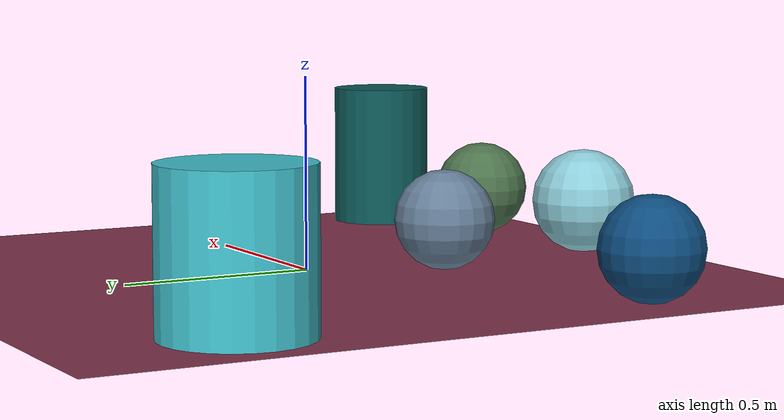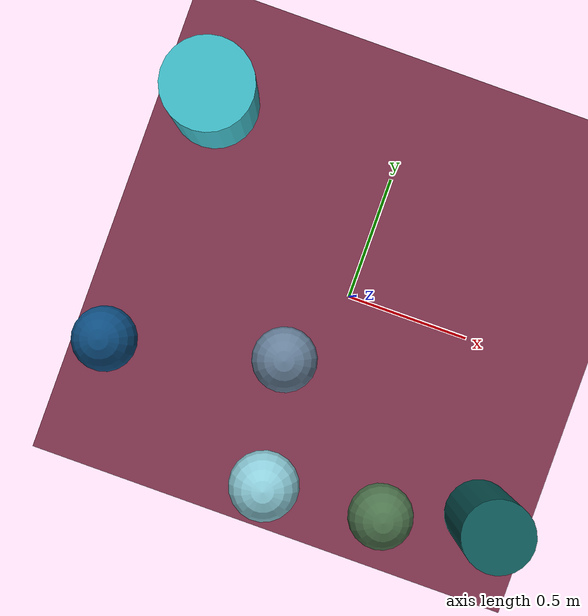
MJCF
<mujoco>
   <asset>
<texture type="skybox" builtin="gradient" rgb1="0.5 0.5 0.7" rgb2="0.2 0.2 0.8" width="256" height="256"/>
<texture name="gradient_0" builtin="gradient" rgb1="0.0 0.0 0.7" rgb2="0.1 0.6 0.3" width="200" height="200"/>
<texture name="checker_1" builtin="checker" rgb1="0.6 0.3 0.4" rgb2="0.0 0.6 0.2" width="200" height="200"/>
<texture name="flat_2" builtin="flat" rgb1="0.4 0.5 0.6" rgb2="0.4 0.5 0.6"  width="200" height="200"/>
<texture name="gradient_3" builtin="gradient" rgb1="0.8 0.9 0.8" rgb2="0.3 0.7 0.9" width="200" height="200"/>
<texture name="checker_4" builtin="checker" rgb1="0.1 0.9 0.6" rgb2="0.4 0.6 1.0" width="200" height="200"/>
<texture name="gradient_5" builtin="gradient" rgb1="0.0 0.1 0.3" rgb2="0.1 0.6 0.4" width="200" height="200"/><material name="gradient_0_mat" reflectance="0" texture="gradient_0" texuniform="true"/>
<material name="checker_1_mat" reflectance="0" texrepeat="8 8" texture="checker_1" texuniform="false" />
<material name="flat_2_mat" reflectance="0" texture="flat_2" texuniform="true"/>
<material name="gradient_3_mat" reflectance="0" texture="gradient_3" texuniform="true"/>
<material name="checker_4_mat" reflectance="0" texrepeat="7 7" texture="checker_4" texuniform="false" />
<material name="gradient_5_mat" reflectance="0" texture="gradient_5" texuniform="true"/>
   </asset>

   <worldbody>
      <light diffuse=".9 .9 .9" pos="0 0 3" dir="0 0 -1"/>
     <geom type="plane" size="1 1 0.1" rgba="0.5 0.2 0.3 1"/>
<geom type="sphere" pos="-0.85 -0.48 0.13" size="0.13 0.13 0.13" material="gradient_0_mat" euler="0 0 43" />
<geom type="sphere" pos="0.4 -0.77 0.13" size="0.13 0.13 0.13" material="checker_1_mat" euler="0 0 78" />
<geom type="sphere" pos="-0.16 -0.32 0.13" size="0.13 0.13 0.13" material="flat_2_mat" euler="0 0 41" />
<geom type="sphere" pos="-0.07 -0.81 0.14" size="0.14 0.14 0.14" material="gradient_3_mat" euler="0 0 13" />
<geom type="cylinder" pos="-0.77 0.55 0.19" size="0.18 0.19 0.19" material="checker_4_mat" euler="0 0 77" />
<geom type="cylinder" pos="0.79 -0.65 0.2" size="0.14 0.2 0.2" material="gradient_5_mat" euler="0 0 44" /><camera euler="60 0 180" fovy="60" name="camera1" pos="-0.2 -1.5 1"></camera>   </worldbody>
</mujoco>
